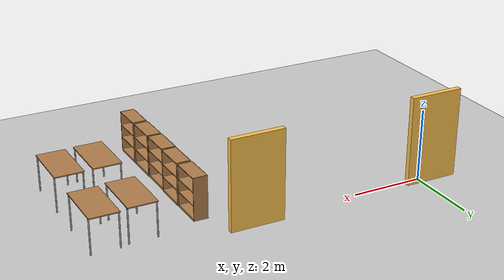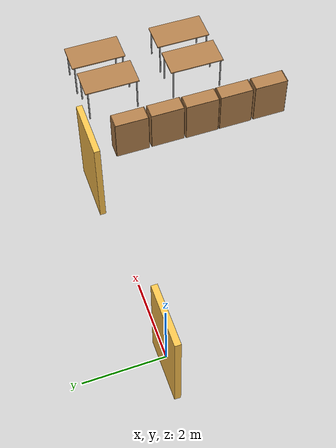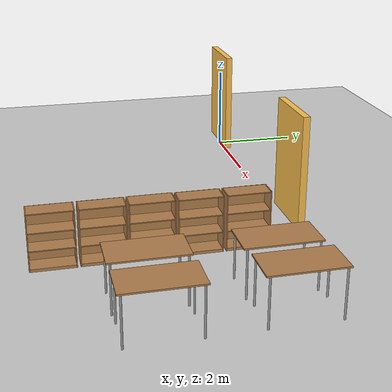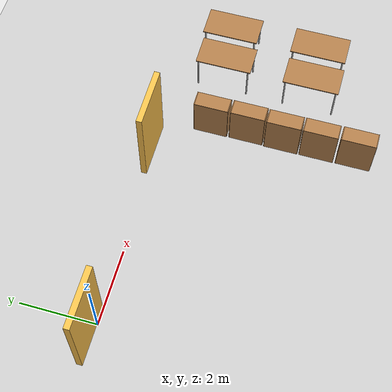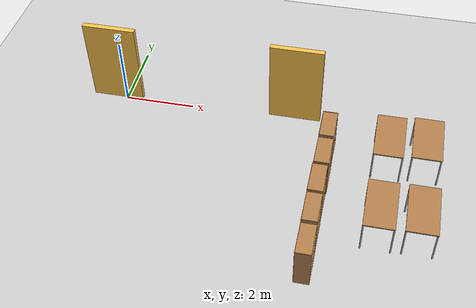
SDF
<sdf version="1.6">
 <world name="default">
  <model name="ground_plane">
   <static>1</static>
   <link name="link">
    <collision name="collision">
     <geometry><plane><normal>0 0 1</normal><size>100 100</size></plane></geometry>
     <surface>
      <contact><collide_bitmask>65535</collide_bitmask></contact>
      <friction><ode><mu>100</mu><mu2>50</mu2></ode></friction>
     </surface>
    </collision>
    <visual name="visual">
     <cast_shadows>0</cast_shadows>
     <geometry><plane><normal>0 0 1</normal><size>100 100</size></plane></geometry>
     <material>
      <script><uri>file://media/materials/scripts/gazebo.material</uri><name>Gazebo/Grey</name></script>
     </material>
    </visual>
   </link>
  </model>
  <model name="model-03">
   <pose>2.36951 0.15153 0 0 -0 0</pose>
   <link name="Wall_83">
    <collision name="Wall_83_Collision">
     <geometry><box><size>1.5 0.15 2.5</size></box></geometry>
     <pose>0 0 1.25 0 -0 0</pose>
    </collision>
    <visual name="Wall_83_Visual">
     <pose>0 0 1.25 0 -0 0</pose>
     <geometry><box><size>1.5 0.15 2.5</size></box></geometry>
     <material>
      <script><uri>file://media/materials/scripts/gazebo.material</uri><name>Gazebo/Grey</name></script>
      <ambient>1 0.764706 0.305882 1</ambient>
     </material>
     <meta><layer>0</layer></meta>
    </visual>
    <pose>-2.6608 -0.049649 0 0 -0 3.14159</pose>
   </link>
   <link name="Wall_85">
    <collision name="Wall_85_Collision">
     <geometry><box><size>1.5 0.15 2.5</size></box></geometry>
     <pose>0 0 1.25 0 -0 0</pose>
    </collision>
    <visual name="Wall_85_Visual">
     <pose>0 0 1.25 0 -0 0</pose>
     <geometry><box><size>1.5 0.15 2.5</size></box></geometry>
     <material>
      <script><uri>file://media/materials/scripts/gazebo.material</uri><name>Gazebo/Grey</name></script>
      <ambient>1 0.764706 0.305882 1</ambient>
     </material>
     <meta><layer>0</layer></meta>
    </visual>
    <pose>2.6608 0.049649 0 0 -0 0</pose>
   </link>
   <static>1</static>
  </model>
  <model name="table">
   <static>1</static>
   <link name="link">
    <collision name="surface">
     <pose>0 0 1 0 -0 0</pose>
     <geometry><box><size>1.5 0.8 0.03</size></box></geometry>
     <surface><friction><ode><mu>0.6</mu><mu2>0.6</mu2></ode></friction></surface>
    </collision>
    <visual name="visual1">
     <pose>0 0 1 0 -0 0</pose>
     <geometry><box><size>1.5 0.8 0.03</size></box></geometry>
     <material>
      <script><uri>file://media/materials/scripts/gazebo.material</uri><name>Gazebo/Wood</name></script>
     </material>
    </visual>
    <collision name="front_left_leg">
     <pose>0.68 0.38 0.5 0 -0 0</pose>
     <geometry><cylinder><radius>0.02</radius><length>1</length></cylinder></geometry>
    </collision>
    <visual name="front_left_leg">
     <pose>0.68 0.38 0.5 0 -0 0</pose>
     <geometry><cylinder><radius>0.02</radius><length>1</length></cylinder></geometry>
     <material>
      <script><uri>file://media/materials/scripts/gazebo.material</uri><name>Gazebo/Grey</name></script>
     </material>
    </visual>
    <collision name="front_right_leg">
     <pose>0.68 -0.38 0.5 0 -0 0</pose>
     <geometry><cylinder><radius>0.02</radius><length>1</length></cylinder></geometry>
    </collision>
    <visual name="front_right_leg">
     <pose>0.68 -0.38 0.5 0 -0 0</pose>
     <geometry><cylinder><radius>0.02</radius><length>1</length></cylinder></geometry>
     <material>
      <script><uri>file://media/materials/scripts/gazebo.material</uri><name>Gazebo/Grey</name></script>
     </material>
    </visual>
    <collision name="back_right_leg">
     <pose>-0.68 -0.38 0.5 0 -0 0</pose>
     <geometry><cylinder><radius>0.02</radius><length>1</length></cylinder></geometry>
    </collision>
    <visual name="back_right_leg">
     <pose>-0.68 -0.38 0.5 0 -0 0</pose>
     <geometry><cylinder><radius>0.02</radius><length>1</length></cylinder></geometry>
     <material>
      <script><uri>file://media/materials/scripts/gazebo.material</uri><name>Gazebo/Grey</name></script>
     </material>
    </visual>
    <collision name="back_left_leg">
     <pose>-0.68 0.38 0.5 0 -0 0</pose>
     <geometry><cylinder><radius>0.02</radius><length>1</length></cylinder></geometry>
    </collision>
    <visual name="back_left_leg">
     <pose>-0.68 0.38 0.5 0 -0 0</pose>
     <geometry><cylinder><radius>0.02</radius><length>1</length></cylinder></geometry>
     <material>
      <script><uri>file://media/materials/scripts/gazebo.material</uri><name>Gazebo/Grey</name></script>
     </material>
    </visual>
   </link>
   <pose>7.81399 -1.06984 -0.000273 0 -0 1.5708</pose>
  </model>
  <model name="table_clone">
   <static>1</static>
   <link name="link">
    <collision name="surface">
     <pose>0 0 1 0 -0 0</pose>
     <geometry><box><size>1.5 0.8 0.03</size></box></geometry>
     <surface><friction><ode><mu>0.6</mu><mu2>0.6</mu2></ode></friction></surface>
    </collision>
    <visual name="visual1">
     <pose>0 0 1 0 -0 0</pose>
     <geometry><box><size>1.5 0.8 0.03</size></box></geometry>
     <material>
      <script><uri>file://media/materials/scripts/gazebo.material</uri><name>Gazebo/Wood</name></script>
     </material>
    </visual>
    <collision name="front_left_leg">
     <pose>0.68 0.38 0.5 0 -0 0</pose>
     <geometry><cylinder><radius>0.02</radius><length>1</length></cylinder></geometry>
    </collision>
    <visual name="front_left_leg">
     <pose>0.68 0.38 0.5 0 -0 0</pose>
     <geometry><cylinder><radius>0.02</radius><length>1</length></cylinder></geometry>
     <material>
      <script><uri>file://media/materials/scripts/gazebo.material</uri><name>Gazebo/Grey</name></script>
     </material>
    </visual>
    <collision name="front_right_leg">
     <pose>0.68 -0.38 0.5 0 -0 0</pose>
     <geometry><cylinder><radius>0.02</radius><length>1</length></cylinder></geometry>
    </collision>
    <visual name="front_right_leg">
     <pose>0.68 -0.38 0.5 0 -0 0</pose>
     <geometry><cylinder><radius>0.02</radius><length>1</length></cylinder></geometry>
     <material>
      <script><uri>file://media/materials/scripts/gazebo.material</uri><name>Gazebo/Grey</name></script>
     </material>
    </visual>
    <collision name="back_right_leg">
     <pose>-0.68 -0.38 0.5 0 -0 0</pose>
     <geometry><cylinder><radius>0.02</radius><length>1</length></cylinder></geometry>
    </collision>
    <visual name="back_right_leg">
     <pose>-0.68 -0.38 0.5 0 -0 0</pose>
     <geometry><cylinder><radius>0.02</radius><length>1</length></cylinder></geometry>
     <material>
      <script><uri>file://media/materials/scripts/gazebo.material</uri><name>Gazebo/Grey</name></script>
     </material>
    </visual>
    <collision name="back_left_leg">
     <pose>-0.68 0.38 0.5 0 -0 0</pose>
     <geometry><cylinder><radius>0.02</radius><length>1</length></cylinder></geometry>
    </collision>
    <visual name="back_left_leg">
     <pose>-0.68 0.38 0.5 0 -0 0</pose>
     <geometry><cylinder><radius>0.02</radius><length>1</length></cylinder></geometry>
     <material>
      <script><uri>file://media/materials/scripts/gazebo.material</uri><name>Gazebo/Grey</name></script>
     </material>
    </visual>
   </link>
   <pose>7.79141 -3.45752 0 0 -0 1.5708</pose>
  </model>
  <model name="table_clone_0">
   <static>1</static>
   <link name="link">
    <collision name="surface">
     <pose>0 0 1 0 -0 0</pose>
     <geometry><box><size>1.5 0.8 0.03</size></box></geometry>
     <surface><friction><ode><mu>0.6</mu><mu2>0.6</mu2></ode></friction></surface>
    </collision>
    <visual name="visual1">
     <pose>0 0 1 0 -0 0</pose>
     <geometry><box><size>1.5 0.8 0.03</size></box></geometry>
     <material>
      <script><uri>file://media/materials/scripts/gazebo.material</uri><name>Gazebo/Wood</name></script>
     </material>
    </visual>
    <collision name="front_left_leg">
     <pose>0.68 0.38 0.5 0 -0 0</pose>
     <geometry><cylinder><radius>0.02</radius><length>1</length></cylinder></geometry>
    </collision>
    <visual name="front_left_leg">
     <pose>0.68 0.38 0.5 0 -0 0</pose>
     <geometry><cylinder><radius>0.02</radius><length>1</length></cylinder></geometry>
     <material>
      <script><uri>file://media/materials/scripts/gazebo.material</uri><name>Gazebo/Grey</name></script>
     </material>
    </visual>
    <collision name="front_right_leg">
     <pose>0.68 -0.38 0.5 0 -0 0</pose>
     <geometry><cylinder><radius>0.02</radius><length>1</length></cylinder></geometry>
    </collision>
    <visual name="front_right_leg">
     <pose>0.68 -0.38 0.5 0 -0 0</pose>
     <geometry><cylinder><radius>0.02</radius><length>1</length></cylinder></geometry>
     <material>
      <script><uri>file://media/materials/scripts/gazebo.material</uri><name>Gazebo/Grey</name></script>
     </material>
    </visual>
    <collision name="back_right_leg">
     <pose>-0.68 -0.38 0.5 0 -0 0</pose>
     <geometry><cylinder><radius>0.02</radius><length>1</length></cylinder></geometry>
    </collision>
    <visual name="back_right_leg">
     <pose>-0.68 -0.38 0.5 0 -0 0</pose>
     <geometry><cylinder><radius>0.02</radius><length>1</length></cylinder></geometry>
     <material>
      <script><uri>file://media/materials/scripts/gazebo.material</uri><name>Gazebo/Grey</name></script>
     </material>
    </visual>
    <collision name="back_left_leg">
     <pose>-0.68 0.38 0.5 0 -0 0</pose>
     <geometry><cylinder><radius>0.02</radius><length>1</length></cylinder></geometry>
    </collision>
    <visual name="back_left_leg">
     <pose>-0.68 0.38 0.5 0 -0 0</pose>
     <geometry><cylinder><radius>0.02</radius><length>1</length></cylinder></geometry>
     <material>
      <script><uri>file://media/materials/scripts/gazebo.material</uri><name>Gazebo/Grey</name></script>
     </material>
    </visual>
   </link>
   <pose>8.82127 -3.42896 0 0 -0 1.5708</pose>
  </model>
  <model name="table_clone_1">
   <static>1</static>
   <link name="link">
    <collision name="surface">
     <pose>0 0 1 0 -0 0</pose>
     <geometry><box><size>1.5 0.8 0.03</size></box></geometry>
     <surface><friction><ode><mu>0.6</mu><mu2>0.6</mu2></ode></friction></surface>
    </collision>
    <visual name="visual1">
     <pose>0 0 1 0 -0 0</pose>
     <geometry><box><size>1.5 0.8 0.03</size></box></geometry>
     <material>
      <script><uri>file://media/materials/scripts/gazebo.material</uri><name>Gazebo/Wood</name></script>
     </material>
    </visual>
    <collision name="front_left_leg">
     <pose>0.68 0.38 0.5 0 -0 0</pose>
     <geometry><cylinder><radius>0.02</radius><length>1</length></cylinder></geometry>
    </collision>
    <visual name="front_left_leg">
     <pose>0.68 0.38 0.5 0 -0 0</pose>
     <geometry><cylinder><radius>0.02</radius><length>1</length></cylinder></geometry>
     <material>
      <script><uri>file://media/materials/scripts/gazebo.material</uri><name>Gazebo/Grey</name></script>
     </material>
    </visual>
    <collision name="front_right_leg">
     <pose>0.68 -0.38 0.5 0 -0 0</pose>
     <geometry><cylinder><radius>0.02</radius><length>1</length></cylinder></geometry>
    </collision>
    <visual name="front_right_leg">
     <pose>0.68 -0.38 0.5 0 -0 0</pose>
     <geometry><cylinder><radius>0.02</radius><length>1</length></cylinder></geometry>
     <material>
      <script><uri>file://media/materials/scripts/gazebo.material</uri><name>Gazebo/Grey</name></script>
     </material>
    </visual>
    <collision name="back_right_leg">
     <pose>-0.68 -0.38 0.5 0 -0 0</pose>
     <geometry><cylinder><radius>0.02</radius><length>1</length></cylinder></geometry>
    </collision>
    <visual name="back_right_leg">
     <pose>-0.68 -0.38 0.5 0 -0 0</pose>
     <geometry><cylinder><radius>0.02</radius><length>1</length></cylinder></geometry>
     <material>
      <script><uri>file://media/materials/scripts/gazebo.material</uri><name>Gazebo/Grey</name></script>
     </material>
    </visual>
    <collision name="back_left_leg">
     <pose>-0.68 0.38 0.5 0 -0 0</pose>
     <geometry><cylinder><radius>0.02</radius><length>1</length></cylinder></geometry>
    </collision>
    <visual name="back_left_leg">
     <pose>-0.68 0.38 0.5 0 -0 0</pose>
     <geometry><cylinder><radius>0.02</radius><length>1</length></cylinder></geometry>
     <material>
      <script><uri>file://media/materials/scripts/gazebo.material</uri><name>Gazebo/Grey</name></script>
     </material>
    </visual>
   </link>
   <pose>8.81542 -0.994729 0 0 -0 1.5708</pose>
  </model>
  <model name="bookshelf_clone">
   <static>1</static>
   <link name="link">
    <inertial><mass>1</mass></inertial>
    <collision name="back">
     <pose>0 0.005 0.6 0 -0 0</pose>
     <geometry><box><size>0.9 0.01 1.2</size></box></geometry>
    </collision>
    <visual name="visual1">
     <pose>0 0.005 0.6 0 -0 0</pose>
     <geometry><box><size>0.9 0.01 1.2</size></box></geometry>
     <material>
      <script><uri>file://media/materials/scripts/gazebo.material</uri><name>Gazebo/Wood</name></script>
     </material>
    </visual>
    <collision name="left_side">
     <pose>0.45 -0.195 0.6 0 -0 0</pose>
     <geometry><box><size>0.02 0.4 1.2</size></box></geometry>
    </collision>
    <visual name="visual2">
     <pose>0.45 -0.195 0.6 0 -0 0</pose>
     <geometry><box><size>0.02 0.4 1.2</size></box></geometry>
     <material>
      <script><uri>file://media/materials/scripts/gazebo.material</uri><name>Gazebo/Wood</name></script>
     </material>
    </visual>
    <collision name="right_side">
     <pose>-0.45 -0.195 0.6 0 -0 0</pose>
     <geometry><box><size>0.02 0.4 1.2</size></box></geometry>
    </collision>
    <visual name="visual3">
     <pose>-0.45 -0.195 0.6 0 -0 0</pose>
     <geometry><box><size>0.02 0.4 1.2</size></box></geometry>
     <material>
      <script><uri>file://media/materials/scripts/gazebo.material</uri><name>Gazebo/Wood</name></script>
     </material>
    </visual>
    <collision name="bottom">
     <pose>0 -0.195 0.03 0 -0 0</pose>
     <geometry><box><size>0.88 0.4 0.06</size></box></geometry>
    </collision>
    <visual name="visual4">
     <pose>0 -0.195 0.03 0 -0 0</pose>
     <geometry><box><size>0.88 0.4 0.06</size></box></geometry>
     <material>
      <script><uri>file://media/materials/scripts/gazebo.material</uri><name>Gazebo/Wood</name></script>
     </material>
    </visual>
    <collision name="top">
     <pose>0 -0.195 1.19 0 -0 0</pose>
     <geometry><box><size>0.88 0.4 0.02</size></box></geometry>
    </collision>
    <visual name="visual5">
     <pose>0 -0.195 1.19 0 -0 0</pose>
     <geometry><box><size>0.88 0.4 0.02</size></box></geometry>
     <material>
      <script><uri>file://media/materials/scripts/gazebo.material</uri><name>Gazebo/Wood</name></script>
     </material>
    </visual>
    <collision name="low_shelf">
     <pose>0 -0.195 0.43 0 -0 0</pose>
     <geometry><box><size>0.88 0.4 0.02</size></box></geometry>
    </collision>
    <visual name="visual6">
     <pose>0 -0.195 0.43 0 -0 0</pose>
     <geometry><box><size>0.88 0.4 0.02</size></box></geometry>
     <material>
      <script><uri>file://media/materials/scripts/gazebo.material</uri><name>Gazebo/Wood</name></script>
     </material>
    </visual>
    <collision name="high_shelf">
     <pose>0 -0.195 0.8 0 -0 0</pose>
     <geometry><box><size>0.88 0.4 0.02</size></box></geometry>
    </collision>
    <visual name="visual7">
     <pose>0 -0.195 0.8 0 -0 0</pose>
     <geometry><box><size>0.88 0.4 0.02</size></box></geometry>
     <material>
      <script><uri>file://media/materials/scripts/gazebo.material</uri><name>Gazebo/Wood</name></script>
     </material>
    </visual>
   </link>
   <pose>5.95095 -5.00341 0 0 -0 1.5708</pose>
  </model>
  <model name="bookshelf_clone_0">
   <static>1</static>
   <link name="link">
    <inertial><mass>1</mass></inertial>
    <collision name="back">
     <pose>0 0.005 0.6 0 -0 0</pose>
     <geometry><box><size>0.9 0.01 1.2</size></box></geometry>
    </collision>
    <visual name="visual1">
     <pose>0 0.005 0.6 0 -0 0</pose>
     <geometry><box><size>0.9 0.01 1.2</size></box></geometry>
     <material>
      <script><uri>file://media/materials/scripts/gazebo.material</uri><name>Gazebo/Wood</name></script>
     </material>
    </visual>
    <collision name="left_side">
     <pose>0.45 -0.195 0.6 0 -0 0</pose>
     <geometry><box><size>0.02 0.4 1.2</size></box></geometry>
    </collision>
    <visual name="visual2">
     <pose>0.45 -0.195 0.6 0 -0 0</pose>
     <geometry><box><size>0.02 0.4 1.2</size></box></geometry>
     <material>
      <script><uri>file://media/materials/scripts/gazebo.material</uri><name>Gazebo/Wood</name></script>
     </material>
    </visual>
    <collision name="right_side">
     <pose>-0.45 -0.195 0.6 0 -0 0</pose>
     <geometry><box><size>0.02 0.4 1.2</size></box></geometry>
    </collision>
    <visual name="visual3">
     <pose>-0.45 -0.195 0.6 0 -0 0</pose>
     <geometry><box><size>0.02 0.4 1.2</size></box></geometry>
     <material>
      <script><uri>file://media/materials/scripts/gazebo.material</uri><name>Gazebo/Wood</name></script>
     </material>
    </visual>
    <collision name="bottom">
     <pose>0 -0.195 0.03 0 -0 0</pose>
     <geometry><box><size>0.88 0.4 0.06</size></box></geometry>
    </collision>
    <visual name="visual4">
     <pose>0 -0.195 0.03 0 -0 0</pose>
     <geometry><box><size>0.88 0.4 0.06</size></box></geometry>
     <material>
      <script><uri>file://media/materials/scripts/gazebo.material</uri><name>Gazebo/Wood</name></script>
     </material>
    </visual>
    <collision name="top">
     <pose>0 -0.195 1.19 0 -0 0</pose>
     <geometry><box><size>0.88 0.4 0.02</size></box></geometry>
    </collision>
    <visual name="visual5">
     <pose>0 -0.195 1.19 0 -0 0</pose>
     <geometry><box><size>0.88 0.4 0.02</size></box></geometry>
     <material>
      <script><uri>file://media/materials/scripts/gazebo.material</uri><name>Gazebo/Wood</name></script>
     </material>
    </visual>
    <collision name="low_shelf">
     <pose>0 -0.195 0.43 0 -0 0</pose>
     <geometry><box><size>0.88 0.4 0.02</size></box></geometry>
    </collision>
    <visual name="visual6">
     <pose>0 -0.195 0.43 0 -0 0</pose>
     <geometry><box><size>0.88 0.4 0.02</size></box></geometry>
     <material>
      <script><uri>file://media/materials/scripts/gazebo.material</uri><name>Gazebo/Wood</name></script>
     </material>
    </visual>
    <collision name="high_shelf">
     <pose>0 -0.195 0.8 0 -0 0</pose>
     <geometry><box><size>0.88 0.4 0.02</size></box></geometry>
    </collision>
    <visual name="visual7">
     <pose>0 -0.195 0.8 0 -0 0</pose>
     <geometry><box><size>0.88 0.4 0.02</size></box></geometry>
     <material>
      <script><uri>file://media/materials/scripts/gazebo.material</uri><name>Gazebo/Wood</name></script>
     </material>
    </visual>
   </link>
   <pose>5.94427 -4.02578 0 0 -0 1.5708</pose>
  </model>
  <model name="bookshelf_clone_1">
   <static>1</static>
   <link name="link">
    <inertial><mass>1</mass></inertial>
    <collision name="back">
     <pose>0 0.005 0.6 0 -0 0</pose>
     <geometry><box><size>0.9 0.01 1.2</size></box></geometry>
    </collision>
    <visual name="visual1">
     <pose>0 0.005 0.6 0 -0 0</pose>
     <geometry><box><size>0.9 0.01 1.2</size></box></geometry>
     <material>
      <script><uri>file://media/materials/scripts/gazebo.material</uri><name>Gazebo/Wood</name></script>
     </material>
    </visual>
    <collision name="left_side">
     <pose>0.45 -0.195 0.6 0 -0 0</pose>
     <geometry><box><size>0.02 0.4 1.2</size></box></geometry>
    </collision>
    <visual name="visual2">
     <pose>0.45 -0.195 0.6 0 -0 0</pose>
     <geometry><box><size>0.02 0.4 1.2</size></box></geometry>
     <material>
      <script><uri>file://media/materials/scripts/gazebo.material</uri><name>Gazebo/Wood</name></script>
     </material>
    </visual>
    <collision name="right_side">
     <pose>-0.45 -0.195 0.6 0 -0 0</pose>
     <geometry><box><size>0.02 0.4 1.2</size></box></geometry>
    </collision>
    <visual name="visual3">
     <pose>-0.45 -0.195 0.6 0 -0 0</pose>
     <geometry><box><size>0.02 0.4 1.2</size></box></geometry>
     <material>
      <script><uri>file://media/materials/scripts/gazebo.material</uri><name>Gazebo/Wood</name></script>
     </material>
    </visual>
    <collision name="bottom">
     <pose>0 -0.195 0.03 0 -0 0</pose>
     <geometry><box><size>0.88 0.4 0.06</size></box></geometry>
    </collision>
    <visual name="visual4">
     <pose>0 -0.195 0.03 0 -0 0</pose>
     <geometry><box><size>0.88 0.4 0.06</size></box></geometry>
     <material>
      <script><uri>file://media/materials/scripts/gazebo.material</uri><name>Gazebo/Wood</name></script>
     </material>
    </visual>
    <collision name="top">
     <pose>0 -0.195 1.19 0 -0 0</pose>
     <geometry><box><size>0.88 0.4 0.02</size></box></geometry>
    </collision>
    <visual name="visual5">
     <pose>0 -0.195 1.19 0 -0 0</pose>
     <geometry><box><size>0.88 0.4 0.02</size></box></geometry>
     <material>
      <script><uri>file://media/materials/scripts/gazebo.material</uri><name>Gazebo/Wood</name></script>
     </material>
    </visual>
    <collision name="low_shelf">
     <pose>0 -0.195 0.43 0 -0 0</pose>
     <geometry><box><size>0.88 0.4 0.02</size></box></geometry>
    </collision>
    <visual name="visual6">
     <pose>0 -0.195 0.43 0 -0 0</pose>
     <geometry><box><size>0.88 0.4 0.02</size></box></geometry>
     <material>
      <script><uri>file://media/materials/scripts/gazebo.material</uri><name>Gazebo/Wood</name></script>
     </material>
    </visual>
    <collision name="high_shelf">
     <pose>0 -0.195 0.8 0 -0 0</pose>
     <geometry><box><size>0.88 0.4 0.02</size></box></geometry>
    </collision>
    <visual name="visual7">
     <pose>0 -0.195 0.8 0 -0 0</pose>
     <geometry><box><size>0.88 0.4 0.02</size></box></geometry>
     <material>
      <script><uri>file://media/materials/scripts/gazebo.material</uri><name>Gazebo/Wood</name></script>
     </material>
    </visual>
   </link>
   <pose>5.93869 -3.06933 0 0 -0 1.5708</pose>
  </model>
  <model name="bookshelf_clone_2">
   <static>1</static>
   <link name="link">
    <inertial><mass>1</mass></inertial>
    <collision name="back">
     <pose>0 0.005 0.6 0 -0 0</pose>
     <geometry><box><size>0.9 0.01 1.2</size></box></geometry>
    </collision>
    <visual name="visual1">
     <pose>0 0.005 0.6 0 -0 0</pose>
     <geometry><box><size>0.9 0.01 1.2</size></box></geometry>
     <material>
      <script><uri>file://media/materials/scripts/gazebo.material</uri><name>Gazebo/Wood</name></script>
     </material>
    </visual>
    <collision name="left_side">
     <pose>0.45 -0.195 0.6 0 -0 0</pose>
     <geometry><box><size>0.02 0.4 1.2</size></box></geometry>
    </collision>
    <visual name="visual2">
     <pose>0.45 -0.195 0.6 0 -0 0</pose>
     <geometry><box><size>0.02 0.4 1.2</size></box></geometry>
     <material>
      <script><uri>file://media/materials/scripts/gazebo.material</uri><name>Gazebo/Wood</name></script>
     </material>
    </visual>
    <collision name="right_side">
     <pose>-0.45 -0.195 0.6 0 -0 0</pose>
     <geometry><box><size>0.02 0.4 1.2</size></box></geometry>
    </collision>
    <visual name="visual3">
     <pose>-0.45 -0.195 0.6 0 -0 0</pose>
     <geometry><box><size>0.02 0.4 1.2</size></box></geometry>
     <material>
      <script><uri>file://media/materials/scripts/gazebo.material</uri><name>Gazebo/Wood</name></script>
     </material>
    </visual>
    <collision name="bottom">
     <pose>0 -0.195 0.03 0 -0 0</pose>
     <geometry><box><size>0.88 0.4 0.06</size></box></geometry>
    </collision>
    <visual name="visual4">
     <pose>0 -0.195 0.03 0 -0 0</pose>
     <geometry><box><size>0.88 0.4 0.06</size></box></geometry>
     <material>
      <script><uri>file://media/materials/scripts/gazebo.material</uri><name>Gazebo/Wood</name></script>
     </material>
    </visual>
    <collision name="top">
     <pose>0 -0.195 1.19 0 -0 0</pose>
     <geometry><box><size>0.88 0.4 0.02</size></box></geometry>
    </collision>
    <visual name="visual5">
     <pose>0 -0.195 1.19 0 -0 0</pose>
     <geometry><box><size>0.88 0.4 0.02</size></box></geometry>
     <material>
      <script><uri>file://media/materials/scripts/gazebo.material</uri><name>Gazebo/Wood</name></script>
     </material>
    </visual>
    <collision name="low_shelf">
     <pose>0 -0.195 0.43 0 -0 0</pose>
     <geometry><box><size>0.88 0.4 0.02</size></box></geometry>
    </collision>
    <visual name="visual6">
     <pose>0 -0.195 0.43 0 -0 0</pose>
     <geometry><box><size>0.88 0.4 0.02</size></box></geometry>
     <material>
      <script><uri>file://media/materials/scripts/gazebo.material</uri><name>Gazebo/Wood</name></script>
     </material>
    </visual>
    <collision name="high_shelf">
     <pose>0 -0.195 0.8 0 -0 0</pose>
     <geometry><box><size>0.88 0.4 0.02</size></box></geometry>
    </collision>
    <visual name="visual7">
     <pose>0 -0.195 0.8 0 -0 0</pose>
     <geometry><box><size>0.88 0.4 0.02</size></box></geometry>
     <material>
      <script><uri>file://media/materials/scripts/gazebo.material</uri><name>Gazebo/Wood</name></script>
     </material>
    </visual>
   </link>
   <pose>5.95448 -2.11176 0 0 -0 1.5708</pose>
  </model>
  <model name="bookshelf_clone_3">
   <static>1</static>
   <link name="link">
    <inertial><mass>1</mass></inertial>
    <collision name="back">
     <pose>0 0.005 0.6 0 -0 0</pose>
     <geometry><box><size>0.9 0.01 1.2</size></box></geometry>
    </collision>
    <visual name="visual1">
     <pose>0 0.005 0.6 0 -0 0</pose>
     <geometry><box><size>0.9 0.01 1.2</size></box></geometry>
     <material>
      <script><uri>file://media/materials/scripts/gazebo.material</uri><name>Gazebo/Wood</name></script>
     </material>
    </visual>
    <collision name="left_side">
     <pose>0.45 -0.195 0.6 0 -0 0</pose>
     <geometry><box><size>0.02 0.4 1.2</size></box></geometry>
    </collision>
    <visual name="visual2">
     <pose>0.45 -0.195 0.6 0 -0 0</pose>
     <geometry><box><size>0.02 0.4 1.2</size></box></geometry>
     <material>
      <script><uri>file://media/materials/scripts/gazebo.material</uri><name>Gazebo/Wood</name></script>
     </material>
    </visual>
    <collision name="right_side">
     <pose>-0.45 -0.195 0.6 0 -0 0</pose>
     <geometry><box><size>0.02 0.4 1.2</size></box></geometry>
    </collision>
    <visual name="visual3">
     <pose>-0.45 -0.195 0.6 0 -0 0</pose>
     <geometry><box><size>0.02 0.4 1.2</size></box></geometry>
     <material>
      <script><uri>file://media/materials/scripts/gazebo.material</uri><name>Gazebo/Wood</name></script>
     </material>
    </visual>
    <collision name="bottom">
     <pose>0 -0.195 0.03 0 -0 0</pose>
     <geometry><box><size>0.88 0.4 0.06</size></box></geometry>
    </collision>
    <visual name="visual4">
     <pose>0 -0.195 0.03 0 -0 0</pose>
     <geometry><box><size>0.88 0.4 0.06</size></box></geometry>
     <material>
      <script><uri>file://media/materials/scripts/gazebo.material</uri><name>Gazebo/Wood</name></script>
     </material>
    </visual>
    <collision name="top">
     <pose>0 -0.195 1.19 0 -0 0</pose>
     <geometry><box><size>0.88 0.4 0.02</size></box></geometry>
    </collision>
    <visual name="visual5">
     <pose>0 -0.195 1.19 0 -0 0</pose>
     <geometry><box><size>0.88 0.4 0.02</size></box></geometry>
     <material>
      <script><uri>file://media/materials/scripts/gazebo.material</uri><name>Gazebo/Wood</name></script>
     </material>
    </visual>
    <collision name="low_shelf">
     <pose>0 -0.195 0.43 0 -0 0</pose>
     <geometry><box><size>0.88 0.4 0.02</size></box></geometry>
    </collision>
    <visual name="visual6">
     <pose>0 -0.195 0.43 0 -0 0</pose>
     <geometry><box><size>0.88 0.4 0.02</size></box></geometry>
     <material>
      <script><uri>file://media/materials/scripts/gazebo.material</uri><name>Gazebo/Wood</name></script>
     </material>
    </visual>
    <collision name="high_shelf">
     <pose>0 -0.195 0.8 0 -0 0</pose>
     <geometry><box><size>0.88 0.4 0.02</size></box></geometry>
    </collision>
    <visual name="visual7">
     <pose>0 -0.195 0.8 0 -0 0</pose>
     <geometry><box><size>0.88 0.4 0.02</size></box></geometry>
     <material>
      <script><uri>file://media/materials/scripts/gazebo.material</uri><name>Gazebo/Wood</name></script>
     </material>
    </visual>
   </link>
   <pose>5.94789 -1.13735 0 0 -0 1.5708</pose>
  </model>
 </world>
</sdf>
